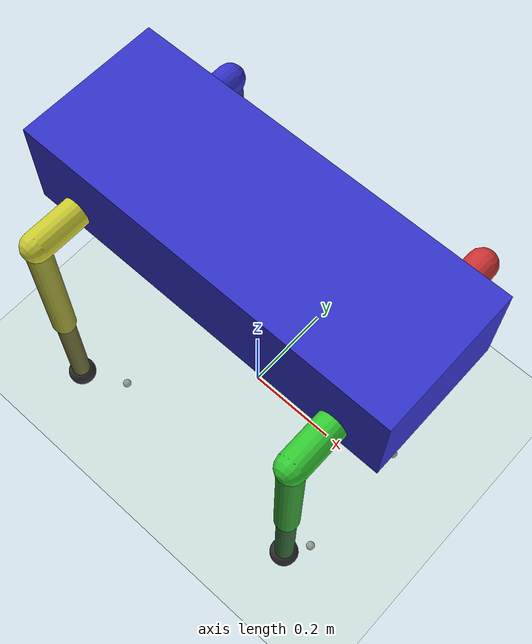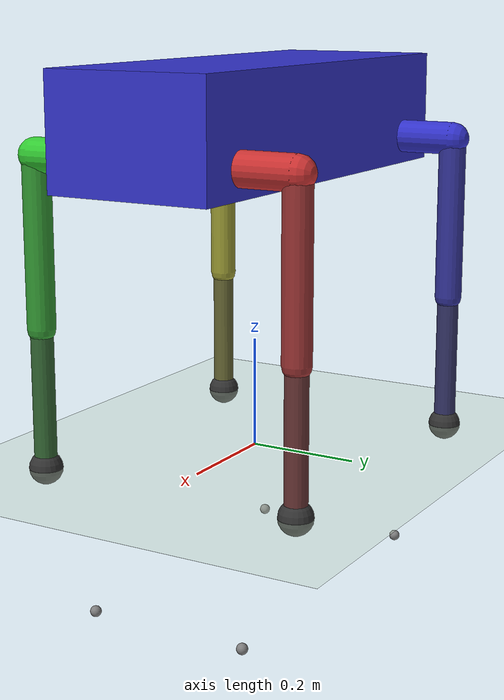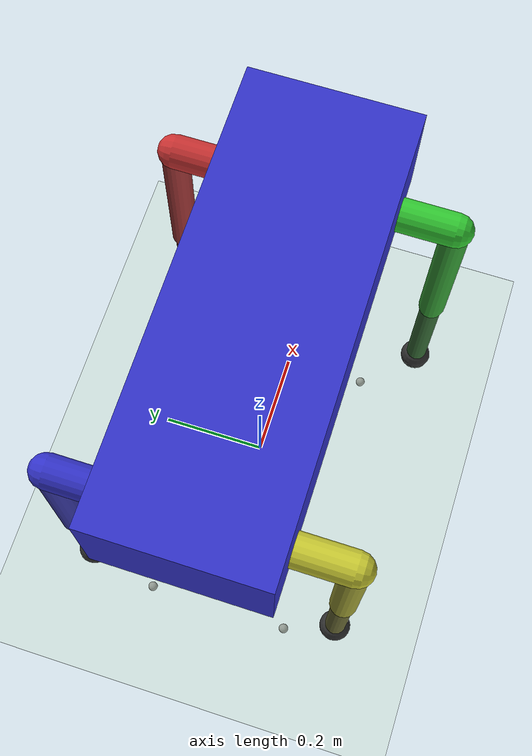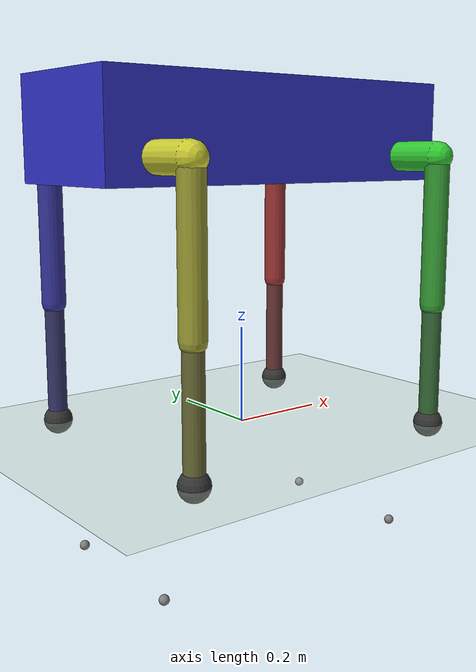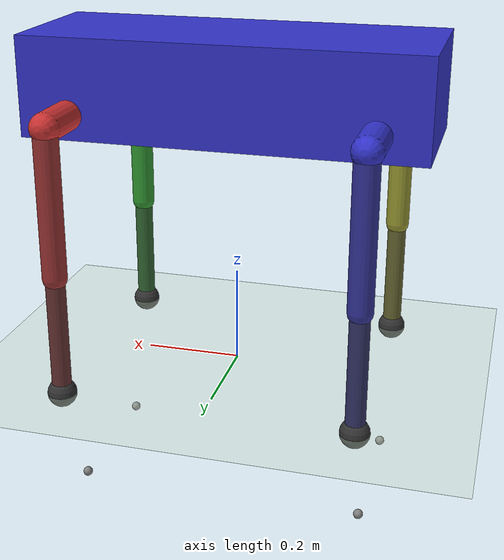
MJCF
<mujoco model="quadruped_robot">
  <compiler angle="radian" coordinate="local" inertiafromgeom="true"/>

  <option timestep="0.001" iterations="50" solver="PGS" gravity="0 0 -9.81"/>

  <size nconmax="500" njmax="2000" nstack="600000"/>

  <default>
    <joint armature="0.01" damping="0.1" limited="true"/>
    <geom conaffinity="0" contype="1" density="1000" friction="1 0.1 0.1" rgba="0.8 0.6 0.4 1"/>
    <motor ctrlrange="-1 1" ctrllimited="true"/>
  </default>

  <asset>
    <texture builtin="gradient" height="100" rgb1="1 1 1" rgb2="0 0 0" type="skybox" width="100"/>
    <texture builtin="flat" height="1278" mark="cross" markrgb="1 1 1" name="texgeom" random="0.01" rgb1="0.8 0.6 0.4" rgb2="0.8 0.6 0.4" type="cube" width="127"/>
    <texture builtin="checker" height="100" name="texplane" rgb1="0 0 0" rgb2="0.8 0.8 0.8" type="2d" width="100"/>
    <material name="MatPlane" reflectance="0.5" shininess="1" specular="1" texrepeat="60 60" texture="texplane"/>
    <material name="geom" texture="texgeom" texuniform="true"/>
  </asset>

  <worldbody>
    <light cutoff="100" diffuse="1 1 1" dir="-0 0 -1.3" directional="true" exponent="1" pos="0 0 1.3" specular=".1 .1 .1"/>
    <geom conaffinity="1" condim="3" material="MatPlane" name="floor" pos="0 0 0" rgba="0.8 0.9 0.8 1" size="100 100 0.125" type="plane"/>

    <!-- Sites for sensors -->
    <site name="torso" pos="0 0 0.6" size="0.01"/>
    <site name="fl_foot" pos="0.3 0.15 -0.25" size="0.01"/>
    <site name="fr_foot" pos="0.3 -0.15 -0.25" size="0.01"/>
    <site name="bl_foot" pos="-0.3 0.15 -0.25" size="0.01"/>
    <site name="br_foot" pos="-0.3 -0.15 -0.25" size="0.01"/>

    <!-- Main body -->
    <body name="torso" pos="0 0 0.6">
      <camera name="track" mode="trackcom" pos="0 -3 0.3" xyaxes="1 0 0 0 0.342 0.940"/>
      <joint name="root" type="free"/>
      <inertial pos="0 0 0" mass="25" diaginertia="1.5 2.5 1.0"/>
      <geom name="torso" type="box" size="0.4 0.15 0.1" rgba="0.2 0.2 0.8 1"/>

      <!-- Front left leg -->
      <body name="fl_hip" pos="0.3 0.15 -0.05">
        <inertial pos="0 0 0" mass="2" diaginertia="0.02 0.02 0.02"/>
        <joint name="fl_hip_abduction" type="hinge" axis="1 0 0" range="-0.8 0.8" damping="1"/>
        <geom name="fl_hip" type="capsule" size="0.03" fromto="0 0 0 0 0.1 0" rgba="0.8 0.2 0.2 1"/>

        <body name="fl_thigh" pos="0 0.1 0">
          <inertial pos="0 0 -0.15" mass="2" diaginertia="0.05 0.05 0.01"/>
          <joint name="fl_hip_flexion" type="hinge" axis="0 1 0" range="-1.57 1.57" damping="1"/>
          <geom name="fl_thigh" type="capsule" size="0.025" fromto="0 0 0 0 0 -0.3" rgba="0.6 0.2 0.2 1"/>

          <body name="fl_shin" pos="0 0 -0.3">
            <inertial pos="0 0 -0.125" mass="1" diaginertia="0.02 0.02 0.005"/>
            <joint name="fl_knee" type="hinge" axis="0 1 0" range="-2.6 0" damping="0.5"/>
            <geom name="fl_shin" type="capsule" size="0.02" fromto="0 0 0 0 0 -0.25" rgba="0.4 0.2 0.2 1"/>

            <body name="fl_foot" pos="0 0 -0.25">
              <inertial pos="0 0 0" mass="0.5" diaginertia="0.01 0.01 0.01"/>
              <joint name="fl_ankle" type="hinge" axis="0 1 0" range="-0.5 0.5" damping="0.2"/>
              <geom name="fl_foot" type="sphere" size="0.03" rgba="0.2 0.2 0.2 1" friction="1.2 0.1 0.1"/>
            </body>
          </body>
        </body>
      </body>

      <!-- Front right leg -->
      <body name="fr_hip" pos="0.3 -0.15 -0.05">
        <inertial pos="0 0 0" mass="2" diaginertia="0.02 0.02 0.02"/>
        <joint name="fr_hip_abduction" type="hinge" axis="1 0 0" range="-0.8 0.8" damping="1"/>
        <geom name="fr_hip" type="capsule" size="0.03" fromto="0 0 0 0 -0.1 0" rgba="0.2 0.8 0.2 1"/>

        <body name="fr_thigh" pos="0 -0.1 0">
          <inertial pos="0 0 -0.15" mass="2" diaginertia="0.05 0.05 0.01"/>
          <joint name="fr_hip_flexion" type="hinge" axis="0 1 0" range="-1.57 1.57" damping="1"/>
          <geom name="fr_thigh" type="capsule" size="0.025" fromto="0 0 0 0 0 -0.3" rgba="0.2 0.6 0.2 1"/>

          <body name="fr_shin" pos="0 0 -0.3">
            <inertial pos="0 0 -0.125" mass="1" diaginertia="0.02 0.02 0.005"/>
            <joint name="fr_knee" type="hinge" axis="0 1 0" range="-2.6 0" damping="0.5"/>
            <geom name="fr_shin" type="capsule" size="0.02" fromto="0 0 0 0 0 -0.25" rgba="0.2 0.4 0.2 1"/>

            <body name="fr_foot" pos="0 0 -0.25">
              <inertial pos="0 0 0" mass="0.5" diaginertia="0.01 0.01 0.01"/>
              <joint name="fr_ankle" type="hinge" axis="0 1 0" range="-0.5 0.5" damping="0.2"/>
              <geom name="fr_foot" type="sphere" size="0.03" rgba="0.2 0.2 0.2 1" friction="1.2 0.1 0.1"/>
            </body>
          </body>
        </body>
      </body>

      <!-- Back left leg -->
      <body name="bl_hip" pos="-0.3 0.15 -0.05">
        <inertial pos="0 0 0" mass="2" diaginertia="0.02 0.02 0.02"/>
        <joint name="bl_hip_abduction" type="hinge" axis="1 0 0" range="-0.8 0.8" damping="1"/>
        <geom name="bl_hip" type="capsule" size="0.03" fromto="0 0 0 0 0.1 0" rgba="0.2 0.2 0.8 1"/>

        <body name="bl_thigh" pos="0 0.1 0">
          <inertial pos="0 0 -0.15" mass="2" diaginertia="0.05 0.05 0.01"/>
          <joint name="bl_hip_flexion" type="hinge" axis="0 1 0" range="-1.57 1.57" damping="1"/>
          <geom name="bl_thigh" type="capsule" size="0.025" fromto="0 0 0 0 0 -0.3" rgba="0.2 0.2 0.6 1"/>

          <body name="bl_shin" pos="0 0 -0.3">
            <inertial pos="0 0 -0.125" mass="1" diaginertia="0.02 0.02 0.005"/>
            <joint name="bl_knee" type="hinge" axis="0 1 0" range="-2.6 0" damping="0.5"/>
            <geom name="bl_shin" type="capsule" size="0.02" fromto="0 0 0 0 0 -0.25" rgba="0.2 0.2 0.4 1"/>

            <body name="bl_foot" pos="0 0 -0.25">
              <inertial pos="0 0 0" mass="0.5" diaginertia="0.01 0.01 0.01"/>
              <joint name="bl_ankle" type="hinge" axis="0 1 0" range="-0.5 0.5" damping="0.2"/>
              <geom name="bl_foot" type="sphere" size="0.03" rgba="0.2 0.2 0.2 1" friction="1.2 0.1 0.1"/>
            </body>
          </body>
        </body>
      </body>

      <!-- Back right leg -->
      <body name="br_hip" pos="-0.3 -0.15 -0.05">
        <inertial pos="0 0 0" mass="2" diaginertia="0.02 0.02 0.02"/>
        <joint name="br_hip_abduction" type="hinge" axis="1 0 0" range="-0.8 0.8" damping="1"/>
        <geom name="br_hip" type="capsule" size="0.03" fromto="0 0 0 0 -0.1 0" rgba="0.8 0.8 0.2 1"/>

        <body name="br_thigh" pos="0 -0.1 0">
          <inertial pos="0 0 -0.15" mass="2" diaginertia="0.05 0.05 0.01"/>
          <joint name="br_hip_flexion" type="hinge" axis="0 1 0" range="-1.57 1.57" damping="1"/>
          <geom name="br_thigh" type="capsule" size="0.025" fromto="0 0 0 0 0 -0.3" rgba="0.6 0.6 0.2 1"/>

          <body name="br_shin" pos="0 0 -0.3">
            <inertial pos="0 0 -0.125" mass="1" diaginertia="0.02 0.02 0.005"/>
            <joint name="br_knee" type="hinge" axis="0 1 0" range="-2.6 0" damping="0.5"/>
            <geom name="br_shin" type="capsule" size="0.02" fromto="0 0 0 0 0 -0.25" rgba="0.4 0.4 0.2 1"/>

            <body name="br_foot" pos="0 0 -0.25">
              <inertial pos="0 0 0" mass="0.5" diaginertia="0.01 0.01 0.01"/>
              <joint name="br_ankle" type="hinge" axis="0 1 0" range="-0.5 0.5" damping="0.2"/>
              <geom name="br_foot" type="sphere" size="0.03" rgba="0.2 0.2 0.2 1" friction="1.2 0.1 0.1"/>
            </body>
          </body>
        </body>
      </body>
    </body>
  </worldbody>

  <actuator>
    <!-- Front left leg actuators -->
    <motor name="fl_hip_abduction_motor" joint="fl_hip_abduction" gear="80" ctrlrange="-80 80"/>
    <motor name="fl_hip_flexion_motor" joint="fl_hip_flexion" gear="80" ctrlrange="-80 80"/>
    <motor name="fl_knee_motor" joint="fl_knee" gear="60" ctrlrange="-60 60"/>
    <motor name="fl_ankle_motor" joint="fl_ankle" gear="40" ctrlrange="-40 40"/>

    <!-- Front right leg actuators -->
    <motor name="fr_hip_abduction_motor" joint="fr_hip_abduction" gear="80" ctrlrange="-80 80"/>
    <motor name="fr_hip_flexion_motor" joint="fr_hip_flexion" gear="80" ctrlrange="-80 80"/>
    <motor name="fr_knee_motor" joint="fr_knee" gear="60" ctrlrange="-60 60"/>
    <motor name="fr_ankle_motor" joint="fr_ankle" gear="40" ctrlrange="-40 40"/>

    <!-- Back left leg actuators -->
    <motor name="bl_hip_abduction_motor" joint="bl_hip_abduction" gear="80" ctrlrange="-80 80"/>
    <motor name="bl_hip_flexion_motor" joint="bl_hip_flexion" gear="80" ctrlrange="-80 80"/>
    <motor name="bl_knee_motor" joint="bl_knee" gear="60" ctrlrange="-60 60"/>
    <motor name="bl_ankle_motor" joint="bl_ankle" gear="40" ctrlrange="-40 40"/>

    <!-- Back right leg actuators -->
    <motor name="br_hip_abduction_motor" joint="br_hip_abduction" gear="80" ctrlrange="-80 80"/>
    <motor name="br_hip_flexion_motor" joint="br_hip_flexion" gear="80" ctrlrange="-80 80"/>
    <motor name="br_knee_motor" joint="br_knee" gear="60" ctrlrange="-60 60"/>
    <motor name="br_ankle_motor" joint="br_ankle" gear="40" ctrlrange="-40 40"/>
  </actuator>

  <sensor>
    <!-- IMU sensor on torso -->
    <accelerometer name="torso_accel" site="torso"/>
    <gyro name="torso_gyro" site="torso"/>
    <magnetometer name="torso_mag" site="torso"/>

    <!-- Joint position sensors -->
    <jointpos name="fl_hip_abduction_pos" joint="fl_hip_abduction"/>
    <jointpos name="fl_hip_flexion_pos" joint="fl_hip_flexion"/>
    <jointpos name="fl_knee_pos" joint="fl_knee"/>
    <jointpos name="fl_ankle_pos" joint="fl_ankle"/>

    <jointpos name="fr_hip_abduction_pos" joint="fr_hip_abduction"/>
    <jointpos name="fr_hip_flexion_pos" joint="fr_hip_flexion"/>
    <jointpos name="fr_knee_pos" joint="fr_knee"/>
    <jointpos name="fr_ankle_pos" joint="fr_ankle"/>

    <jointpos name="bl_hip_abduction_pos" joint="bl_hip_abduction"/>
    <jointpos name="bl_hip_flexion_pos" joint="bl_hip_flexion"/>
    <jointpos name="bl_knee_pos" joint="bl_knee"/>
    <jointpos name="bl_ankle_pos" joint="bl_ankle"/>

    <jointpos name="br_hip_abduction_pos" joint="br_hip_abduction"/>
    <jointpos name="br_hip_flexion_pos" joint="br_hip_flexion"/>
    <jointpos name="br_knee_pos" joint="br_knee"/>
    <jointpos name="br_ankle_pos" joint="br_ankle"/>

    <!-- Joint velocity sensors -->
    <jointvel name="fl_hip_abduction_vel" joint="fl_hip_abduction"/>
    <jointvel name="fl_hip_flexion_vel" joint="fl_hip_flexion"/>
    <jointvel name="fl_knee_vel" joint="fl_knee"/>
    <jointvel name="fl_ankle_vel" joint="fl_ankle"/>

    <jointvel name="fr_hip_abduction_vel" joint="fr_hip_abduction"/>
    <jointvel name="fr_hip_flexion_vel" joint="fr_hip_flexion"/>
    <jointvel name="fr_knee_vel" joint="fr_knee"/>
    <jointvel name="fr_ankle_vel" joint="fr_ankle"/>

    <jointvel name="bl_hip_abduction_vel" joint="bl_hip_abduction"/>
    <jointvel name="bl_hip_flexion_vel" joint="bl_hip_flexion"/>
    <jointvel name="bl_knee_vel" joint="bl_knee"/>
    <jointvel name="bl_ankle_vel" joint="bl_ankle"/>

    <jointvel name="br_hip_abduction_vel" joint="br_hip_abduction"/>
    <jointvel name="br_hip_flexion_vel" joint="br_hip_flexion"/>
    <jointvel name="br_knee_vel" joint="br_knee"/>
    <jointvel name="br_ankle_vel" joint="br_ankle"/>

    <!-- Foot contact sensors -->
    <touch name="fl_foot_contact" site="fl_foot"/>
    <touch name="fr_foot_contact" site="fr_foot"/>
    <touch name="bl_foot_contact" site="bl_foot"/>
    <touch name="br_foot_contact" site="br_foot"/>
  </sensor>
</mujoco>
